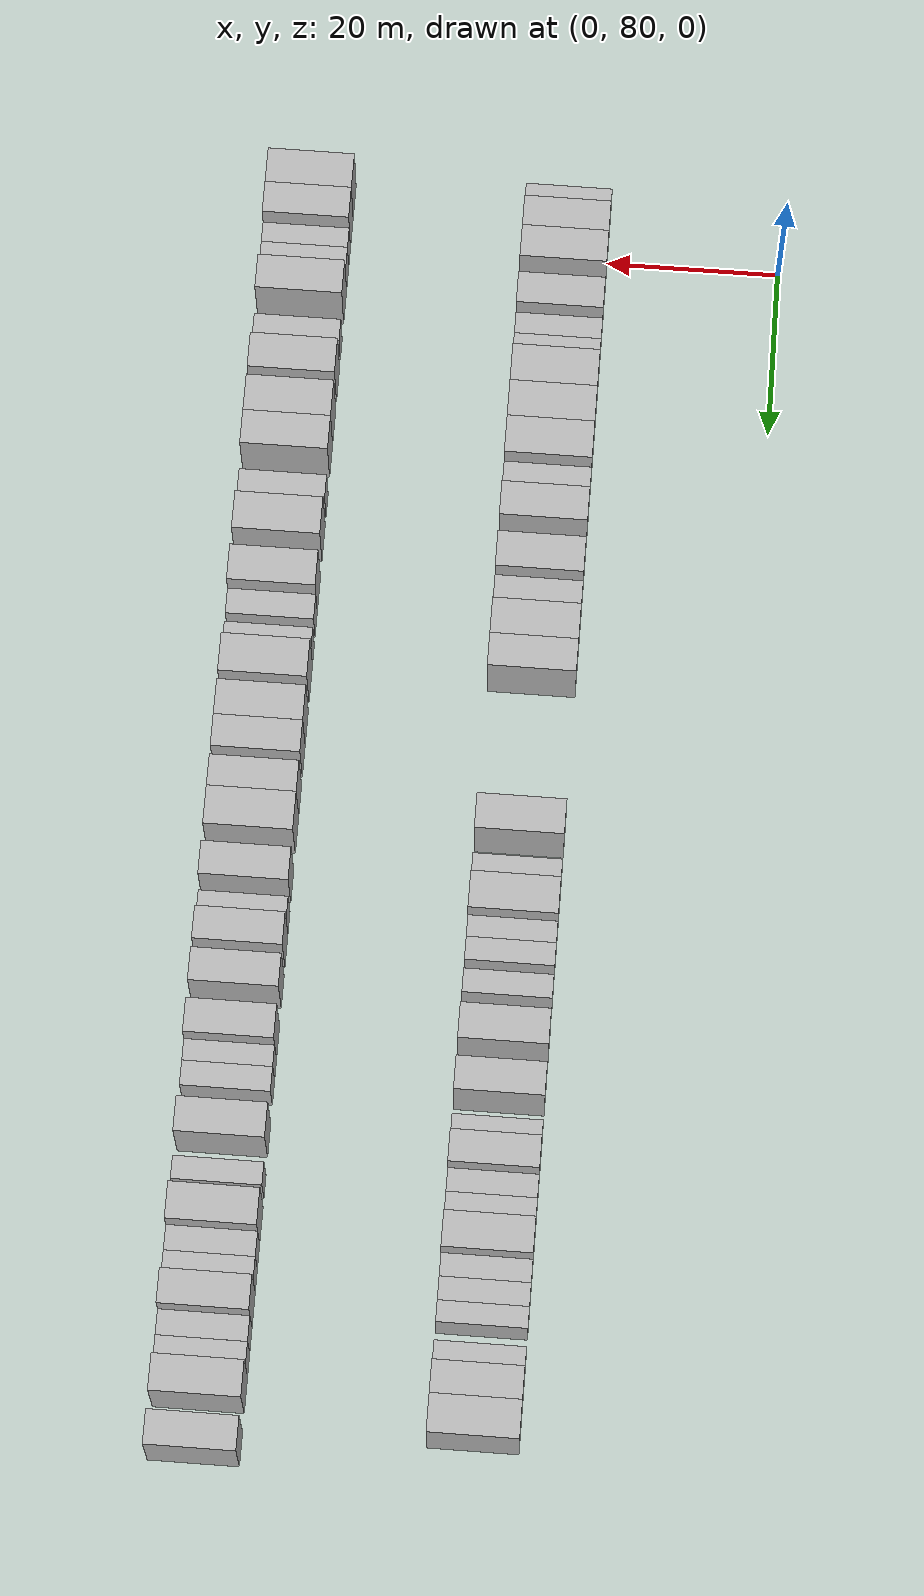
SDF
<sdf version="1.6">
 <world name="default">
  <model name="building_73">
   <static>1</static>
   <pose>25.0000 74.6193 0 0.000000 0.000000 0.000000</pose>
   <link name="link">
    <pose>0 0 3.00 0 0 0</pose>
    <collision name="collision"><geometry><box><size>10.0000 2.9037 6.0000</size></box></geometry></collision>
    <visual name="visual">
     <cast_shadows>0</cast_shadows>
     <geometry><box><size>10.0000 2.9037 6.0000</size></box></geometry>
     <material>
      <script>
       <uri>model://HANNAS_wall/materials/scripts</uri>
       <uri>model://HANNAS_wall/materials/textures</uri>
       <name>vrc/HANNAS_wall</name>
      </script>
     </material>
    </visual>
   </link>
  </model>
  <model name="building_74">
   <static>1</static>
   <pose>25.0000 77.9240 0 0.000000 0.000000 0.000000</pose>
   <link name="link">
    <pose>0 0 4.50 0 0 0</pose>
    <collision name="collision"><geometry><box><size>10.0000 3.7057 9.0000</size></box></geometry></collision>
    <visual name="visual">
     <cast_shadows>0</cast_shadows>
     <geometry><box><size>10.0000 3.7057 9.0000</size></box></geometry>
     <material>
      <script>
       <uri>model://HANNAS_wall/materials/scripts</uri>
       <uri>model://HANNAS_wall/materials/textures</uri>
       <name>vrc/HANNAS_wall</name>
      </script>
     </material>
    </visual>
   </link>
  </model>
  <model name="building_75">
   <static>1</static>
   <pose>25.0000 81.7201 0 0.000000 0.000000 0.000000</pose>
   <link name="link">
    <pose>0 0 4.50 0 0 0</pose>
    <collision name="collision"><geometry><box><size>10.0000 3.8865 9.0000</size></box></geometry></collision>
    <visual name="visual">
     <cast_shadows>0</cast_shadows>
     <geometry><box><size>10.0000 3.8865 9.0000</size></box></geometry>
     <material>
      <script>
       <uri>model://HANNAS_wall/materials/scripts</uri>
       <uri>model://HANNAS_wall/materials/textures</uri>
       <name>vrc/HANNAS_wall</name>
      </script>
     </material>
    </visual>
   </link>
  </model>
  <model name="building_76">
   <static>1</static>
   <pose>25.0000 87.5533 0 0.000000 0.000000 0.000000</pose>
   <link name="link">
    <pose>0 0 4.50 0 0 0</pose>
    <collision name="collision"><geometry><box><size>10.0000 3.7800 9.0000</size></box></geometry></collision>
    <visual name="visual">
     <cast_shadows>0</cast_shadows>
     <geometry><box><size>10.0000 3.7800 9.0000</size></box></geometry>
     <material>
      <script>
       <uri>model://HANNAS_wall/materials/scripts</uri>
       <uri>model://HANNAS_wall/materials/textures</uri>
       <name>vrc/HANNAS_wall</name>
      </script>
     </material>
    </visual>
   </link>
  </model>
  <model name="building_77">
   <static>1</static>
   <pose>25.0000 90.7347 0 0.000000 0.000000 0.000000</pose>
   <link name="link">
    <pose>0 0 3.00 0 0 0</pose>
    <collision name="collision"><geometry><box><size>10.0000 2.5827 6.0000</size></box></geometry></collision>
    <visual name="visual">
     <cast_shadows>0</cast_shadows>
     <geometry><box><size>10.0000 2.5827 6.0000</size></box></geometry>
     <material>
      <script>
       <uri>model://HANNAS_wall/materials/scripts</uri>
       <uri>model://HANNAS_wall/materials/textures</uri>
       <name>vrc/HANNAS_wall</name>
      </script>
     </material>
    </visual>
   </link>
  </model>
  <model name="building_78">
   <static>1</static>
   <pose>25.0000 93.3407 0 0.000000 0.000000 0.000000</pose>
   <link name="link">
    <pose>0 0 3.00 0 0 0</pose>
    <collision name="collision"><geometry><box><size>10.0000 2.6293 6.0000</size></box></geometry></collision>
    <visual name="visual">
     <cast_shadows>0</cast_shadows>
     <geometry><box><size>10.0000 2.6293 6.0000</size></box></geometry>
     <material>
      <script>
       <uri>model://HANNAS_wall/materials/scripts</uri>
       <uri>model://HANNAS_wall/materials/textures</uri>
       <name>vrc/HANNAS_wall</name>
      </script>
     </material>
    </visual>
   </link>
  </model>
  <model name="building_79">
   <static>1</static>
   <pose>25.0000 96.8874 0 0.000000 0.000000 0.000000</pose>
   <link name="link">
    <pose>0 0 4.50 0 0 0</pose>
    <collision name="collision"><geometry><box><size>10.0000 4.4642 9.0000</size></box></geometry></collision>
    <visual name="visual">
     <cast_shadows>0</cast_shadows>
     <geometry><box><size>10.0000 4.4642 9.0000</size></box></geometry>
     <material>
      <script>
       <uri>model://HANNAS_wall/materials/scripts</uri>
       <uri>model://HANNAS_wall/materials/textures</uri>
       <name>vrc/HANNAS_wall</name>
      </script>
     </material>
    </visual>
   </link>
  </model>
  <model name="building_80">
   <static>1</static>
   <pose>25.0000 101.2977 0 0.000000 0.000000 0.000000</pose>
   <link name="link">
    <pose>0 0 4.50 0 0 0</pose>
    <collision name="collision"><geometry><box><size>10.0000 4.3563 9.0000</size></box></geometry></collision>
    <visual name="visual">
     <cast_shadows>0</cast_shadows>
     <geometry><box><size>10.0000 4.3563 9.0000</size></box></geometry>
     <material>
      <script>
       <uri>model://HANNAS_wall/materials/scripts</uri>
       <uri>model://HANNAS_wall/materials/textures</uri>
       <name>vrc/HANNAS_wall</name>
      </script>
     </material>
    </visual>
   </link>
  </model>
  <model name="building_81">
   <static>1</static>
   <pose>25.0000 105.7015 0 0.000000 0.000000 0.000000</pose>
   <link name="link">
    <pose>0 0 4.50 0 0 0</pose>
    <collision name="collision"><geometry><box><size>10.0000 4.4514 9.0000</size></box></geometry></collision>
    <visual name="visual">
     <cast_shadows>0</cast_shadows>
     <geometry><box><size>10.0000 4.4514 9.0000</size></box></geometry>
     <material>
      <script>
       <uri>model://HANNAS_wall/materials/scripts</uri>
       <uri>model://HANNAS_wall/materials/textures</uri>
       <name>vrc/HANNAS_wall</name>
      </script>
     </material>
    </visual>
   </link>
  </model>
  <model name="building_82">
   <static>1</static>
   <pose>25.0000 109.2137 0 0.000000 0.000000 0.000000</pose>
   <link name="link">
    <pose>0 0 3.00 0 0 0</pose>
    <collision name="collision"><geometry><box><size>10.0000 2.5729 6.0000</size></box></geometry></collision>
    <visual name="visual">
     <cast_shadows>0</cast_shadows>
     <geometry><box><size>10.0000 2.5729 6.0000</size></box></geometry>
     <material>
      <script>
       <uri>model://HANNAS_wall/materials/scripts</uri>
       <uri>model://HANNAS_wall/materials/textures</uri>
       <name>vrc/HANNAS_wall</name>
      </script>
     </material>
    </visual>
   </link>
  </model>
  <model name="building_83">
   <static>1</static>
   <pose>25.0000 113.5273 0 0.000000 0.000000 0.000000</pose>
   <link name="link">
    <pose>0 0 4.50 0 0 0</pose>
    <collision name="collision"><geometry><box><size>10.0000 4.0542 9.0000</size></box></geometry></collision>
    <visual name="visual">
     <cast_shadows>0</cast_shadows>
     <geometry><box><size>10.0000 4.0542 9.0000</size></box></geometry>
     <material>
      <script>
       <uri>model://HANNAS_wall/materials/scripts</uri>
       <uri>model://HANNAS_wall/materials/textures</uri>
       <name>vrc/HANNAS_wall</name>
      </script>
     </material>
    </visual>
   </link>
  </model>
  <model name="building_84">
   <static>1</static>
   <pose>25.0000 119.6583 0 0.000000 0.000000 0.000000</pose>
   <link name="link">
    <pose>0 0 4.50 0 0 0</pose>
    <collision name="collision"><geometry><box><size>10.0000 4.2080 9.0000</size></box></geometry></collision>
    <visual name="visual">
     <cast_shadows>0</cast_shadows>
     <geometry><box><size>10.0000 4.2080 9.0000</size></box></geometry>
     <material>
      <script>
       <uri>model://HANNAS_wall/materials/scripts</uri>
       <uri>model://HANNAS_wall/materials/textures</uri>
       <name>vrc/HANNAS_wall</name>
      </script>
     </material>
    </visual>
   </link>
  </model>
  <model name="building_85">
   <static>1</static>
   <pose>25.0000 123.1771 0 0.000000 0.000000 0.000000</pose>
   <link name="link">
    <pose>0 0 3.00 0 0 0</pose>
    <collision name="collision"><geometry><box><size>10.0000 2.8296 6.0000</size></box></geometry></collision>
    <visual name="visual">
     <cast_shadows>0</cast_shadows>
     <geometry><box><size>10.0000 2.8296 6.0000</size></box></geometry>
     <material>
      <script>
       <uri>model://HANNAS_wall/materials/scripts</uri>
       <uri>model://HANNAS_wall/materials/textures</uri>
       <name>vrc/HANNAS_wall</name>
      </script>
     </material>
    </visual>
   </link>
  </model>
  <model name="building_86">
   <static>1</static>
   <pose>25.0000 127.7052 0 0.000000 0.000000 0.000000</pose>
   <link name="link">
    <pose>0 0 4.50 0 0 0</pose>
    <collision name="collision"><geometry><box><size>10.0000 4.2266 9.0000</size></box></geometry></collision>
    <visual name="visual">
     <cast_shadows>0</cast_shadows>
     <geometry><box><size>10.0000 4.2266 9.0000</size></box></geometry>
     <material>
      <script>
       <uri>model://HANNAS_wall/materials/scripts</uri>
       <uri>model://HANNAS_wall/materials/textures</uri>
       <name>vrc/HANNAS_wall</name>
      </script>
     </material>
    </visual>
   </link>
  </model>
  <model name="building_87">
   <static>1</static>
   <pose>25.0000 131.7479 0 0.000000 0.000000 0.000000</pose>
   <link name="link">
    <pose>0 0 4.50 0 0 0</pose>
    <collision name="collision"><geometry><box><size>10.0000 3.8587 9.0000</size></box></geometry></collision>
    <visual name="visual">
     <cast_shadows>0</cast_shadows>
     <geometry><box><size>10.0000 3.8587 9.0000</size></box></geometry>
     <material>
      <script>
       <uri>model://HANNAS_wall/materials/scripts</uri>
       <uri>model://HANNAS_wall/materials/textures</uri>
       <name>vrc/HANNAS_wall</name>
      </script>
     </material>
    </visual>
   </link>
  </model>
  <model name="building_88">
   <static>1</static>
   <pose>25.0000 150.7793 0 0.000000 0.000000 0.000000</pose>
   <link name="link">
    <pose>0 0 4.50 0 0 0</pose>
    <collision name="collision"><geometry><box><size>10.0000 4.0680 9.0000</size></box></geometry></collision>
    <visual name="visual">
     <cast_shadows>0</cast_shadows>
     <geometry><box><size>10.0000 4.0680 9.0000</size></box></geometry>
     <material>
      <script>
       <uri>model://HANNAS_wall/materials/scripts</uri>
       <uri>model://HANNAS_wall/materials/textures</uri>
       <name>vrc/HANNAS_wall</name>
      </script>
     </material>
    </visual>
   </link>
  </model>
  <model name="building_89">
   <static>1</static>
   <pose>25.0000 156.2995 0 0.000000 0.000000 0.000000</pose>
   <link name="link">
    <pose>0 0 3.00 0 0 0</pose>
    <collision name="collision"><geometry><box><size>10.0000 2.9725 6.0000</size></box></geometry></collision>
    <visual name="visual">
     <cast_shadows>0</cast_shadows>
     <geometry><box><size>10.0000 2.9725 6.0000</size></box></geometry>
     <material>
      <script>
       <uri>model://HANNAS_wall/materials/scripts</uri>
       <uri>model://HANNAS_wall/materials/textures</uri>
       <name>vrc/HANNAS_wall</name>
      </script>
     </material>
    </visual>
   </link>
  </model>
  <model name="building_90">
   <static>1</static>
   <pose>25.0000 159.9072 0 0.000000 0.000000 0.000000</pose>
   <link name="link">
    <pose>0 0 4.50 0 0 0</pose>
    <collision name="collision"><geometry><box><size>10.0000 4.2428 9.0000</size></box></geometry></collision>
    <visual name="visual">
     <cast_shadows>0</cast_shadows>
     <geometry><box><size>10.0000 4.2428 9.0000</size></box></geometry>
     <material>
      <script>
       <uri>model://HANNAS_wall/materials/scripts</uri>
       <uri>model://HANNAS_wall/materials/textures</uri>
       <name>vrc/HANNAS_wall</name>
      </script>
     </material>
    </visual>
   </link>
  </model>
  <model name="building_91">
   <static>1</static>
   <pose>25.0000 163.2697 0 0.000000 0.000000 0.000000</pose>
   <link name="link">
    <pose>0 0 3.00 0 0 0</pose>
    <collision name="collision"><geometry><box><size>10.0000 2.4823 6.0000</size></box></geometry></collision>
    <visual name="visual">
     <cast_shadows>0</cast_shadows>
     <geometry><box><size>10.0000 2.4823 6.0000</size></box></geometry>
     <material>
      <script>
       <uri>model://HANNAS_wall/materials/scripts</uri>
       <uri>model://HANNAS_wall/materials/textures</uri>
       <name>vrc/HANNAS_wall</name>
      </script>
     </material>
    </visual>
   </link>
  </model>
  <model name="building_92">
   <static>1</static>
   <pose>25.0000 165.8402 0 0.000000 0.000000 0.000000</pose>
   <link name="link">
    <pose>0 0 3.00 0 0 0</pose>
    <collision name="collision"><geometry><box><size>10.0000 2.6586 6.0000</size></box></geometry></collision>
    <visual name="visual">
     <cast_shadows>0</cast_shadows>
     <geometry><box><size>10.0000 2.6586 6.0000</size></box></geometry>
     <material>
      <script>
       <uri>model://HANNAS_wall/materials/scripts</uri>
       <uri>model://HANNAS_wall/materials/textures</uri>
       <name>vrc/HANNAS_wall</name>
      </script>
     </material>
    </visual>
   </link>
  </model>
  <model name="building_93">
   <static>1</static>
   <pose>25.0000 169.5331 0 0.000000 0.000000 0.000000</pose>
   <link name="link">
    <pose>0 0 3.00 0 0 0</pose>
    <collision name="collision"><geometry><box><size>10.0000 2.7274 6.0000</size></box></geometry></collision>
    <visual name="visual">
     <cast_shadows>0</cast_shadows>
     <geometry><box><size>10.0000 2.7274 6.0000</size></box></geometry>
     <material>
      <script>
       <uri>model://HANNAS_wall/materials/scripts</uri>
       <uri>model://HANNAS_wall/materials/textures</uri>
       <name>vrc/HANNAS_wall</name>
      </script>
     </material>
    </visual>
   </link>
  </model>
  <model name="building_94">
   <static>1</static>
   <pose>25.0000 174.9212 0 0.000000 0.000000 0.000000</pose>
   <link name="link">
    <pose>0 0 4.50 0 0 0</pose>
    <collision name="collision"><geometry><box><size>10.0000 4.0488 9.0000</size></box></geometry></collision>
    <visual name="visual">
     <cast_shadows>0</cast_shadows>
     <geometry><box><size>10.0000 4.0488 9.0000</size></box></geometry>
     <material>
      <script>
       <uri>model://HANNAS_wall/materials/scripts</uri>
       <uri>model://HANNAS_wall/materials/textures</uri>
       <name>vrc/HANNAS_wall</name>
      </script>
     </material>
    </visual>
   </link>
  </model>
  <model name="building_95">
   <static>1</static>
   <pose>25.0000 180.8458 0 0.000000 0.000000 0.000000</pose>
   <link name="link">
    <pose>0 0 4.50 0 0 0</pose>
    <collision name="collision"><geometry><box><size>10.0000 3.8003 9.0000</size></box></geometry></collision>
    <visual name="visual">
     <cast_shadows>0</cast_shadows>
     <geometry><box><size>10.0000 3.8003 9.0000</size></box></geometry>
     <material>
      <script>
       <uri>model://HANNAS_wall/materials/scripts</uri>
       <uri>model://HANNAS_wall/materials/textures</uri>
       <name>vrc/HANNAS_wall</name>
      </script>
     </material>
    </visual>
   </link>
  </model>
  <model name="building_96">
   <static>1</static>
   <pose>25.0000 185.9771 0 0.000000 0.000000 0.000000</pose>
   <link name="link">
    <pose>0 0 3.00 0 0 0</pose>
    <collision name="collision"><geometry><box><size>10.0000 2.4623 6.0000</size></box></geometry></collision>
    <visual name="visual">
     <cast_shadows>0</cast_shadows>
     <geometry><box><size>10.0000 2.4623 6.0000</size></box></geometry>
     <material>
      <script>
       <uri>model://HANNAS_wall/materials/scripts</uri>
       <uri>model://HANNAS_wall/materials/textures</uri>
       <name>vrc/HANNAS_wall</name>
      </script>
     </material>
    </visual>
   </link>
  </model>
  <model name="building_97">
   <static>1</static>
   <pose>25.0000 189.0285 0 0.000000 0.000000 0.000000</pose>
   <link name="link">
    <pose>0 0 4.50 0 0 0</pose>
    <collision name="collision"><geometry><box><size>10.0000 3.6406 9.0000</size></box></geometry></collision>
    <visual name="visual">
     <cast_shadows>0</cast_shadows>
     <geometry><box><size>10.0000 3.6406 9.0000</size></box></geometry>
     <material>
      <script>
       <uri>model://HANNAS_wall/materials/scripts</uri>
       <uri>model://HANNAS_wall/materials/textures</uri>
       <name>vrc/HANNAS_wall</name>
      </script>
     </material>
    </visual>
   </link>
  </model>
  <model name="building_98">
   <static>1</static>
   <pose>25.0000 192.1681 0 0.000000 0.000000 0.000000</pose>
   <link name="link">
    <pose>0 0 3.00 0 0 0</pose>
    <collision name="collision"><geometry><box><size>10.0000 2.6386 6.0000</size></box></geometry></collision>
    <visual name="visual">
     <cast_shadows>0</cast_shadows>
     <geometry><box><size>10.0000 2.6386 6.0000</size></box></geometry>
     <material>
      <script>
       <uri>model://HANNAS_wall/materials/scripts</uri>
       <uri>model://HANNAS_wall/materials/textures</uri>
       <name>vrc/HANNAS_wall</name>
      </script>
     </material>
    </visual>
   </link>
  </model>
  <model name="building_99">
   <static>1</static>
   <pose>25.0000 194.8685 0 0.000000 0.000000 0.000000</pose>
   <link name="link">
    <pose>0 0 3.00 0 0 0</pose>
    <collision name="collision"><geometry><box><size>10.0000 2.7622 6.0000</size></box></geometry></collision>
    <visual name="visual">
     <cast_shadows>0</cast_shadows>
     <geometry><box><size>10.0000 2.7622 6.0000</size></box></geometry>
     <material>
      <script>
       <uri>model://HANNAS_wall/materials/scripts</uri>
       <uri>model://HANNAS_wall/materials/textures</uri>
       <name>vrc/HANNAS_wall</name>
      </script>
     </material>
    </visual>
   </link>
  </model>
  <model name="building_100">
   <static>1</static>
   <pose>25.0000 198.2871 0 0.000000 0.000000 0.000000</pose>
   <link name="link">
    <pose>0 0 4.50 0 0 0</pose>
    <collision name="collision"><geometry><box><size>10.0000 4.0748 9.0000</size></box></geometry></collision>
    <visual name="visual">
     <cast_shadows>0</cast_shadows>
     <geometry><box><size>10.0000 4.0748 9.0000</size></box></geometry>
     <material>
      <script>
       <uri>model://HANNAS_wall/materials/scripts</uri>
       <uri>model://HANNAS_wall/materials/textures</uri>
       <name>vrc/HANNAS_wall</name>
      </script>
     </material>
    </visual>
   </link>
  </model>
  <model name="building_101">
   <static>1</static>
   <pose>25.0000 201.6214 0 0.000000 0.000000 0.000000</pose>
   <link name="link">
    <pose>0 0 3.00 0 0 0</pose>
    <collision name="collision"><geometry><box><size>10.0000 2.5939 6.0000</size></box></geometry></collision>
    <visual name="visual">
     <cast_shadows>0</cast_shadows>
     <geometry><box><size>10.0000 2.5939 6.0000</size></box></geometry>
     <material>
      <script>
       <uri>model://HANNAS_wall/materials/scripts</uri>
       <uri>model://HANNAS_wall/materials/textures</uri>
       <name>vrc/HANNAS_wall</name>
      </script>
     </material>
    </visual>
   </link>
  </model>
  <model name="building_102">
   <static>1</static>
   <pose>25.0000 204.2337 0 0.000000 0.000000 0.000000</pose>
   <link name="link">
    <pose>0 0 3.00 0 0 0</pose>
    <collision name="collision"><geometry><box><size>10.0000 2.6308 6.0000</size></box></geometry></collision>
    <visual name="visual">
     <cast_shadows>0</cast_shadows>
     <geometry><box><size>10.0000 2.6308 6.0000</size></box></geometry>
     <material>
      <script>
       <uri>model://HANNAS_wall/materials/scripts</uri>
       <uri>model://HANNAS_wall/materials/textures</uri>
       <name>vrc/HANNAS_wall</name>
      </script>
     </material>
    </visual>
   </link>
  </model>
  <model name="building_103">
   <static>1</static>
   <pose>25.0000 206.7562 0 0.000000 0.000000 0.000000</pose>
   <link name="link">
    <pose>0 0 3.00 0 0 0</pose>
    <collision name="collision"><geometry><box><size>10.0000 2.4143 6.0000</size></box></geometry></collision>
    <visual name="visual">
     <cast_shadows>0</cast_shadows>
     <geometry><box><size>10.0000 2.4143 6.0000</size></box></geometry>
     <material>
      <script>
       <uri>model://HANNAS_wall/materials/scripts</uri>
       <uri>model://HANNAS_wall/materials/textures</uri>
       <name>vrc/HANNAS_wall</name>
      </script>
     </material>
    </visual>
   </link>
  </model>
  <model name="building_104">
   <static>1</static>
   <pose>25.0000 211.3185 0 0.000000 0.000000 0.000000</pose>
   <link name="link">
    <pose>0 0 3.00 0 0 0</pose>
    <collision name="collision"><geometry><box><size>10.0000 2.7103 6.0000</size></box></geometry></collision>
    <visual name="visual">
     <cast_shadows>0</cast_shadows>
     <geometry><box><size>10.0000 2.7103 6.0000</size></box></geometry>
     <material>
      <script>
       <uri>model://HANNAS_wall/materials/scripts</uri>
       <uri>model://HANNAS_wall/materials/textures</uri>
       <name>vrc/HANNAS_wall</name>
      </script>
     </material>
    </visual>
   </link>
  </model>
  <model name="building_105">
   <static>1</static>
   <pose>25.0000 214.5007 0 0.000000 0.000000 0.000000</pose>
   <link name="link">
    <pose>0 0 4.50 0 0 0</pose>
    <collision name="collision"><geometry><box><size>10.0000 3.6541 9.0000</size></box></geometry></collision>
    <visual name="visual">
     <cast_shadows>0</cast_shadows>
     <geometry><box><size>10.0000 3.6541 9.0000</size></box></geometry>
     <material>
      <script>
       <uri>model://HANNAS_wall/materials/scripts</uri>
       <uri>model://HANNAS_wall/materials/textures</uri>
       <name>vrc/HANNAS_wall</name>
      </script>
     </material>
    </visual>
   </link>
  </model>
  <model name="building_106">
   <static>1</static>
   <pose>25.0000 218.4634 0 0.000000 0.000000 0.000000</pose>
   <link name="link">
    <pose>0 0 4.50 0 0 0</pose>
    <collision name="collision"><geometry><box><size>10.0000 4.2713 9.0000</size></box></geometry></collision>
    <visual name="visual">
     <cast_shadows>0</cast_shadows>
     <geometry><box><size>10.0000 4.2713 9.0000</size></box></geometry>
     <material>
      <script>
       <uri>model://HANNAS_wall/materials/scripts</uri>
       <uri>model://HANNAS_wall/materials/textures</uri>
       <name>vrc/HANNAS_wall</name>
      </script>
     </material>
    </visual>
   </link>
  </model>
  <model name="building_175">
   <static>1</static>
   <pose>55.0000 74.4858 0 0.000000 0.000000 0.000000</pose>
   <link name="link">
    <pose>0 0 4.50 0 0 0</pose>
    <collision name="collision"><geometry><box><size>10.0000 4.2472 9.0000</size></box></geometry></collision>
    <visual name="visual">
     <cast_shadows>0</cast_shadows>
     <geometry><box><size>10.0000 4.2472 9.0000</size></box></geometry>
     <material>
      <script>
       <uri>model://HANNAS_wall/materials/scripts</uri>
       <uri>model://HANNAS_wall/materials/textures</uri>
       <name>vrc/HANNAS_wall</name>
      </script>
     </material>
    </visual>
   </link>
  </model>
  <model name="building_176">
   <static>1</static>
   <pose>55.0000 78.5011 0 0.000000 0.000000 0.000000</pose>
   <link name="link">
    <pose>0 0 4.50 0 0 0</pose>
    <collision name="collision"><geometry><box><size>10.0000 3.7834 9.0000</size></box></geometry></collision>
    <visual name="visual">
     <cast_shadows>0</cast_shadows>
     <geometry><box><size>10.0000 3.7834 9.0000</size></box></geometry>
     <material>
      <script>
       <uri>model://HANNAS_wall/materials/scripts</uri>
       <uri>model://HANNAS_wall/materials/textures</uri>
       <name>vrc/HANNAS_wall</name>
      </script>
     </material>
    </visual>
   </link>
  </model>
  <model name="building_177">
   <static>1</static>
   <pose>55.0000 81.6072 0 0.000000 0.000000 0.000000</pose>
   <link name="link">
    <pose>0 0 3.00 0 0 0</pose>
    <collision name="collision"><geometry><box><size>10.0000 2.4286 6.0000</size></box></geometry></collision>
    <visual name="visual">
     <cast_shadows>0</cast_shadows>
     <geometry><box><size>10.0000 2.4286 6.0000</size></box></geometry>
     <material>
      <script>
       <uri>model://HANNAS_wall/materials/scripts</uri>
       <uri>model://HANNAS_wall/materials/textures</uri>
       <name>vrc/HANNAS_wall</name>
      </script>
     </material>
    </visual>
   </link>
  </model>
  <model name="building_178">
   <static>1</static>
   <pose>55.0000 84.3041 0 0.000000 0.000000 0.000000</pose>
   <link name="link">
    <pose>0 0 3.00 0 0 0</pose>
    <collision name="collision"><geometry><box><size>10.0000 2.9653 6.0000</size></box></geometry></collision>
    <visual name="visual">
     <cast_shadows>0</cast_shadows>
     <geometry><box><size>10.0000 2.9653 6.0000</size></box></geometry>
     <material>
      <script>
       <uri>model://HANNAS_wall/materials/scripts</uri>
       <uri>model://HANNAS_wall/materials/textures</uri>
       <name>vrc/HANNAS_wall</name>
      </script>
     </material>
    </visual>
   </link>
  </model>
  <model name="building_179">
   <static>1</static>
   <pose>55.0000 87.8325 0 0.000000 0.000000 0.000000</pose>
   <link name="link">
    <pose>0 0 4.50 0 0 0</pose>
    <collision name="collision"><geometry><box><size>10.0000 4.0915 9.0000</size></box></geometry></collision>
    <visual name="visual">
     <cast_shadows>0</cast_shadows>
     <geometry><box><size>10.0000 4.0915 9.0000</size></box></geometry>
     <material>
      <script>
       <uri>model://HANNAS_wall/materials/scripts</uri>
       <uri>model://HANNAS_wall/materials/textures</uri>
       <name>vrc/HANNAS_wall</name>
      </script>
     </material>
    </visual>
   </link>
  </model>
  <model name="building_180">
   <static>1</static>
   <pose>55.0000 93.2039 0 0.000000 0.000000 0.000000</pose>
   <link name="link">
    <pose>0 0 3.00 0 0 0</pose>
    <collision name="collision"><geometry><box><size>10.0000 2.6511 6.0000</size></box></geometry></collision>
    <visual name="visual">
     <cast_shadows>0</cast_shadows>
     <geometry><box><size>10.0000 2.6511 6.0000</size></box></geometry>
     <material>
      <script>
       <uri>model://HANNAS_wall/materials/scripts</uri>
       <uri>model://HANNAS_wall/materials/textures</uri>
       <name>vrc/HANNAS_wall</name>
      </script>
     </material>
    </visual>
   </link>
  </model>
  <model name="building_181">
   <static>1</static>
   <pose>55.0000 97.6251 0 0.000000 0.000000 0.000000</pose>
   <link name="link">
    <pose>0 0 4.50 0 0 0</pose>
    <collision name="collision"><geometry><box><size>10.0000 4.1913 9.0000</size></box></geometry></collision>
    <visual name="visual">
     <cast_shadows>0</cast_shadows>
     <geometry><box><size>10.0000 4.1913 9.0000</size></box></geometry>
     <material>
      <script>
       <uri>model://HANNAS_wall/materials/scripts</uri>
       <uri>model://HANNAS_wall/materials/textures</uri>
       <name>vrc/HANNAS_wall</name>
      </script>
     </material>
    </visual>
   </link>
  </model>
  <model name="building_182">
   <static>1</static>
   <pose>55.0000 102.8966 0 0.000000 0.000000 0.000000</pose>
   <link name="link">
    <pose>0 0 4.50 0 0 0</pose>
    <collision name="collision"><geometry><box><size>10.0000 4.3517 9.0000</size></box></geometry></collision>
    <visual name="visual">
     <cast_shadows>0</cast_shadows>
     <geometry><box><size>10.0000 4.3517 9.0000</size></box></geometry>
     <material>
      <script>
       <uri>model://HANNAS_wall/materials/scripts</uri>
       <uri>model://HANNAS_wall/materials/textures</uri>
       <name>vrc/HANNAS_wall</name>
      </script>
     </material>
    </visual>
   </link>
  </model>
  <model name="building_183">
   <static>1</static>
   <pose>55.0000 107.1035 0 0.000000 0.000000 0.000000</pose>
   <link name="link">
    <pose>0 0 4.50 0 0 0</pose>
    <collision name="collision"><geometry><box><size>10.0000 4.0620 9.0000</size></box></geometry></collision>
    <visual name="visual">
     <cast_shadows>0</cast_shadows>
     <geometry><box><size>10.0000 4.0620 9.0000</size></box></geometry>
     <material>
      <script>
       <uri>model://HANNAS_wall/materials/scripts</uri>
       <uri>model://HANNAS_wall/materials/textures</uri>
       <name>vrc/HANNAS_wall</name>
      </script>
     </material>
    </visual>
   </link>
  </model>
  <model name="building_184">
   <static>1</static>
   <pose>55.0000 112.5785 0 0.000000 0.000000 0.000000</pose>
   <link name="link">
    <pose>0 0 3.00 0 0 0</pose>
    <collision name="collision"><geometry><box><size>10.0000 2.8879 6.0000</size></box></geometry></collision>
    <visual name="visual">
     <cast_shadows>0</cast_shadows>
     <geometry><box><size>10.0000 2.8879 6.0000</size></box></geometry>
     <material>
      <script>
       <uri>model://HANNAS_wall/materials/scripts</uri>
       <uri>model://HANNAS_wall/materials/textures</uri>
       <name>vrc/HANNAS_wall</name>
      </script>
     </material>
    </visual>
   </link>
  </model>
  <model name="building_185">
   <static>1</static>
   <pose>55.0000 117.2468 0 0.000000 0.000000 0.000000</pose>
   <link name="link">
    <pose>0 0 4.50 0 0 0</pose>
    <collision name="collision"><geometry><box><size>10.0000 4.4488 9.0000</size></box></geometry></collision>
    <visual name="visual">
     <cast_shadows>0</cast_shadows>
     <geometry><box><size>10.0000 4.4488 9.0000</size></box></geometry>
     <material>
      <script>
       <uri>model://HANNAS_wall/materials/scripts</uri>
       <uri>model://HANNAS_wall/materials/textures</uri>
       <name>vrc/HANNAS_wall</name>
      </script>
     </material>
    </visual>
   </link>
  </model>
  <model name="building_186">
   <static>1</static>
   <pose>55.0000 123.5730 0 0.000000 0.000000 0.000000</pose>
   <link name="link">
    <pose>0 0 4.50 0 0 0</pose>
    <collision name="collision"><geometry><box><size>10.0000 4.2035 9.0000</size></box></geometry></collision>
    <visual name="visual">
     <cast_shadows>0</cast_shadows>
     <geometry><box><size>10.0000 4.2035 9.0000</size></box></geometry>
     <material>
      <script>
       <uri>model://HANNAS_wall/materials/scripts</uri>
       <uri>model://HANNAS_wall/materials/textures</uri>
       <name>vrc/HANNAS_wall</name>
      </script>
     </material>
    </visual>
   </link>
  </model>
  <model name="building_187">
   <static>1</static>
   <pose>55.0000 127.1680 0 0.000000 0.000000 0.000000</pose>
   <link name="link">
    <pose>0 0 3.00 0 0 0</pose>
    <collision name="collision"><geometry><box><size>10.0000 2.9866 6.0000</size></box></geometry></collision>
    <visual name="visual">
     <cast_shadows>0</cast_shadows>
     <geometry><box><size>10.0000 2.9866 6.0000</size></box></geometry>
     <material>
      <script>
       <uri>model://HANNAS_wall/materials/scripts</uri>
       <uri>model://HANNAS_wall/materials/textures</uri>
       <name>vrc/HANNAS_wall</name>
      </script>
     </material>
    </visual>
   </link>
  </model>
  <model name="building_188">
   <static>1</static>
   <pose>55.0000 130.8858 0 0.000000 0.000000 0.000000</pose>
   <link name="link">
    <pose>0 0 3.00 0 0 0</pose>
    <collision name="collision"><geometry><box><size>10.0000 2.4490 6.0000</size></box></geometry></collision>
    <visual name="visual">
     <cast_shadows>0</cast_shadows>
     <geometry><box><size>10.0000 2.4490 6.0000</size></box></geometry>
     <material>
      <script>
       <uri>model://HANNAS_wall/materials/scripts</uri>
       <uri>model://HANNAS_wall/materials/textures</uri>
       <name>vrc/HANNAS_wall</name>
      </script>
     </material>
    </visual>
   </link>
  </model>
  <model name="building_189">
   <static>1</static>
   <pose>55.0000 134.3501 0 0.000000 0.000000 0.000000</pose>
   <link name="link">
    <pose>0 0 4.50 0 0 0</pose>
    <collision name="collision"><geometry><box><size>10.0000 4.4795 9.0000</size></box></geometry></collision>
    <visual name="visual">
     <cast_shadows>0</cast_shadows>
     <geometry><box><size>10.0000 4.4795 9.0000</size></box></geometry>
     <material>
      <script>
       <uri>model://HANNAS_wall/materials/scripts</uri>
       <uri>model://HANNAS_wall/materials/textures</uri>
       <name>vrc/HANNAS_wall</name>
      </script>
     </material>
    </visual>
   </link>
  </model>
  <model name="building_190">
   <static>1</static>
   <pose>55.0000 139.6657 0 0.000000 0.000000 0.000000</pose>
   <link name="link">
    <pose>0 0 4.50 0 0 0</pose>
    <collision name="collision"><geometry><box><size>10.0000 4.1517 9.0000</size></box></geometry></collision>
    <visual name="visual">
     <cast_shadows>0</cast_shadows>
     <geometry><box><size>10.0000 4.1517 9.0000</size></box></geometry>
     <material>
      <script>
       <uri>model://HANNAS_wall/materials/scripts</uri>
       <uri>model://HANNAS_wall/materials/textures</uri>
       <name>vrc/HANNAS_wall</name>
      </script>
     </material>
    </visual>
   </link>
  </model>
  <model name="building_191">
   <static>1</static>
   <pose>55.0000 143.6187 0 0.000000 0.000000 0.000000</pose>
   <link name="link">
    <pose>0 0 4.50 0 0 0</pose>
    <collision name="collision"><geometry><box><size>10.0000 3.7542 9.0000</size></box></geometry></collision>
    <visual name="visual">
     <cast_shadows>0</cast_shadows>
     <geometry><box><size>10.0000 3.7542 9.0000</size></box></geometry>
     <material>
      <script>
       <uri>model://HANNAS_wall/materials/scripts</uri>
       <uri>model://HANNAS_wall/materials/textures</uri>
       <name>vrc/HANNAS_wall</name>
      </script>
     </material>
    </visual>
   </link>
  </model>
  <model name="building_192">
   <static>1</static>
   <pose>55.0000 148.3157 0 0.000000 0.000000 0.000000</pose>
   <link name="link">
    <pose>0 0 4.50 0 0 0</pose>
    <collision name="collision"><geometry><box><size>10.0000 3.6399 9.0000</size></box></geometry></collision>
    <visual name="visual">
     <cast_shadows>0</cast_shadows>
     <geometry><box><size>10.0000 3.6399 9.0000</size></box></geometry>
     <material>
      <script>
       <uri>model://HANNAS_wall/materials/scripts</uri>
       <uri>model://HANNAS_wall/materials/textures</uri>
       <name>vrc/HANNAS_wall</name>
      </script>
     </material>
    </visual>
   </link>
  </model>
  <model name="building_193">
   <static>1</static>
   <pose>55.0000 152.3643 0 0.000000 0.000000 0.000000</pose>
   <link name="link">
    <pose>0 0 4.50 0 0 0</pose>
    <collision name="collision"><geometry><box><size>10.0000 4.4573 9.0000</size></box></geometry></collision>
    <visual name="visual">
     <cast_shadows>0</cast_shadows>
     <geometry><box><size>10.0000 4.4573 9.0000</size></box></geometry>
     <material>
      <script>
       <uri>model://HANNAS_wall/materials/scripts</uri>
       <uri>model://HANNAS_wall/materials/textures</uri>
       <name>vrc/HANNAS_wall</name>
      </script>
     </material>
    </visual>
   </link>
  </model>
  <model name="building_194">
   <static>1</static>
   <pose>55.0000 158.5067 0 0.000000 0.000000 0.000000</pose>
   <link name="link">
    <pose>0 0 4.50 0 0 0</pose>
    <collision name="collision"><geometry><box><size>10.0000 3.8273 9.0000</size></box></geometry></collision>
    <visual name="visual">
     <cast_shadows>0</cast_shadows>
     <geometry><box><size>10.0000 3.8273 9.0000</size></box></geometry>
     <material>
      <script>
       <uri>model://HANNAS_wall/materials/scripts</uri>
       <uri>model://HANNAS_wall/materials/textures</uri>
       <name>vrc/HANNAS_wall</name>
      </script>
     </material>
    </visual>
   </link>
  </model>
  <model name="building_195">
   <static>1</static>
   <pose>55.0000 162.7634 0 0.000000 0.000000 0.000000</pose>
   <link name="link">
    <pose>0 0 3.00 0 0 0</pose>
    <collision name="collision"><geometry><box><size>10.0000 2.6861 6.0000</size></box></geometry></collision>
    <visual name="visual">
     <cast_shadows>0</cast_shadows>
     <geometry><box><size>10.0000 2.6861 6.0000</size></box></geometry>
     <material>
      <script>
       <uri>model://HANNAS_wall/materials/scripts</uri>
       <uri>model://HANNAS_wall/materials/textures</uri>
       <name>vrc/HANNAS_wall</name>
      </script>
     </material>
    </visual>
   </link>
  </model>
  <model name="building_196">
   <static>1</static>
   <pose>55.0000 165.9940 0 0.000000 0.000000 0.000000</pose>
   <link name="link">
    <pose>0 0 4.50 0 0 0</pose>
    <collision name="collision"><geometry><box><size>10.0000 3.7751 9.0000</size></box></geometry></collision>
    <visual name="visual">
     <cast_shadows>0</cast_shadows>
     <geometry><box><size>10.0000 3.7751 9.0000</size></box></geometry>
     <material>
      <script>
       <uri>model://HANNAS_wall/materials/scripts</uri>
       <uri>model://HANNAS_wall/materials/textures</uri>
       <name>vrc/HANNAS_wall</name>
      </script>
     </material>
    </visual>
   </link>
  </model>
  <model name="building_197">
   <static>1</static>
   <pose>55.0000 170.7726 0 0.000000 0.000000 0.000000</pose>
   <link name="link">
    <pose>0 0 4.50 0 0 0</pose>
    <collision name="collision"><geometry><box><size>10.0000 3.7822 9.0000</size></box></geometry></collision>
    <visual name="visual">
     <cast_shadows>0</cast_shadows>
     <geometry><box><size>10.0000 3.7822 9.0000</size></box></geometry>
     <material>
      <script>
       <uri>model://HANNAS_wall/materials/scripts</uri>
       <uri>model://HANNAS_wall/materials/textures</uri>
       <name>vrc/HANNAS_wall</name>
      </script>
     </material>
    </visual>
   </link>
  </model>
  <model name="building_198">
   <static>1</static>
   <pose>55.0000 176.5979 0 0.000000 0.000000 0.000000</pose>
   <link name="link">
    <pose>0 0 4.50 0 0 0</pose>
    <collision name="collision"><geometry><box><size>10.0000 3.8683 9.0000</size></box></geometry></collision>
    <visual name="visual">
     <cast_shadows>0</cast_shadows>
     <geometry><box><size>10.0000 3.8683 9.0000</size></box></geometry>
     <material>
      <script>
       <uri>model://HANNAS_wall/materials/scripts</uri>
       <uri>model://HANNAS_wall/materials/textures</uri>
       <name>vrc/HANNAS_wall</name>
      </script>
     </material>
    </visual>
   </link>
  </model>
  <model name="building_199">
   <static>1</static>
   <pose>55.0000 179.7537 0 0.000000 0.000000 0.000000</pose>
   <link name="link">
    <pose>0 0 3.00 0 0 0</pose>
    <collision name="collision"><geometry><box><size>10.0000 2.4434 6.0000</size></box></geometry></collision>
    <visual name="visual">
     <cast_shadows>0</cast_shadows>
     <geometry><box><size>10.0000 2.4434 6.0000</size></box></geometry>
     <material>
      <script>
       <uri>model://HANNAS_wall/materials/scripts</uri>
       <uri>model://HANNAS_wall/materials/textures</uri>
       <name>vrc/HANNAS_wall</name>
      </script>
     </material>
    </visual>
   </link>
  </model>
  <model name="building_200">
   <static>1</static>
   <pose>55.0000 182.3860 0 0.000000 0.000000 0.000000</pose>
   <link name="link">
    <pose>0 0 3.00 0 0 0</pose>
    <collision name="collision"><geometry><box><size>10.0000 2.8213 6.0000</size></box></geometry></collision>
    <visual name="visual">
     <cast_shadows>0</cast_shadows>
     <geometry><box><size>10.0000 2.8213 6.0000</size></box></geometry>
     <material>
      <script>
       <uri>model://HANNAS_wall/materials/scripts</uri>
       <uri>model://HANNAS_wall/materials/textures</uri>
       <name>vrc/HANNAS_wall</name>
      </script>
     </material>
    </visual>
   </link>
  </model>
  <model name="building_201">
   <static>1</static>
   <pose>55.0000 187.7677 0 0.000000 0.000000 0.000000</pose>
   <link name="link">
    <pose>0 0 4.50 0 0 0</pose>
    <collision name="collision"><geometry><box><size>10.0000 3.9419 9.0000</size></box></geometry></collision>
    <visual name="visual">
     <cast_shadows>0</cast_shadows>
     <geometry><box><size>10.0000 3.9419 9.0000</size></box></geometry>
     <material>
      <script>
       <uri>model://HANNAS_wall/materials/scripts</uri>
       <uri>model://HANNAS_wall/materials/textures</uri>
       <name>vrc/HANNAS_wall</name>
      </script>
     </material>
    </visual>
   </link>
  </model>
  <model name="building_202">
   <static>1</static>
   <pose>55.0000 193.0406 0 0.000000 0.000000 0.000000</pose>
   <link name="link">
    <pose>0 0 3.00 0 0 0</pose>
    <collision name="collision"><geometry><box><size>10.0000 2.6040 6.0000</size></box></geometry></collision>
    <visual name="visual">
     <cast_shadows>0</cast_shadows>
     <geometry><box><size>10.0000 2.6040 6.0000</size></box></geometry>
     <material>
      <script>
       <uri>model://HANNAS_wall/materials/scripts</uri>
       <uri>model://HANNAS_wall/materials/textures</uri>
       <name>vrc/HANNAS_wall</name>
      </script>
     </material>
    </visual>
   </link>
  </model>
  <model name="building_203">
   <static>1</static>
   <pose>55.0000 197.4133 0 0.000000 0.000000 0.000000</pose>
   <link name="link">
    <pose>0 0 4.50 0 0 0</pose>
    <collision name="collision"><geometry><box><size>10.0000 4.1412 9.0000</size></box></geometry></collision>
    <visual name="visual">
     <cast_shadows>0</cast_shadows>
     <geometry><box><size>10.0000 4.1412 9.0000</size></box></geometry>
     <material>
      <script>
       <uri>model://HANNAS_wall/materials/scripts</uri>
       <uri>model://HANNAS_wall/materials/textures</uri>
       <name>vrc/HANNAS_wall</name>
      </script>
     </material>
    </visual>
   </link>
  </model>
  <model name="building_204">
   <static>1</static>
   <pose>55.0000 200.8940 0 0.000000 0.000000 0.000000</pose>
   <link name="link">
    <pose>0 0 3.00 0 0 0</pose>
    <collision name="collision"><geometry><box><size>10.0000 2.8201 6.0000</size></box></geometry></collision>
    <visual name="visual">
     <cast_shadows>0</cast_shadows>
     <geometry><box><size>10.0000 2.8201 6.0000</size></box></geometry>
     <material>
      <script>
       <uri>model://HANNAS_wall/materials/scripts</uri>
       <uri>model://HANNAS_wall/materials/textures</uri>
       <name>vrc/HANNAS_wall</name>
      </script>
     </material>
    </visual>
   </link>
  </model>
  <model name="building_205">
   <static>1</static>
   <pose>55.0000 203.6222 0 0.000000 0.000000 0.000000</pose>
   <link name="link">
    <pose>0 0 3.00 0 0 0</pose>
    <collision name="collision"><geometry><box><size>10.0000 2.6362 6.0000</size></box></geometry></collision>
    <visual name="visual">
     <cast_shadows>0</cast_shadows>
     <geometry><box><size>10.0000 2.6362 6.0000</size></box></geometry>
     <material>
      <script>
       <uri>model://HANNAS_wall/materials/scripts</uri>
       <uri>model://HANNAS_wall/materials/textures</uri>
       <name>vrc/HANNAS_wall</name>
      </script>
     </material>
    </visual>
   </link>
  </model>
  <model name="building_206">
   <static>1</static>
   <pose>55.0000 206.8846 0 0.000000 0.000000 0.000000</pose>
   <link name="link">
    <pose>0 0 4.50 0 0 0</pose>
    <collision name="collision"><geometry><box><size>10.0000 3.8886 9.0000</size></box></geometry></collision>
    <visual name="visual">
     <cast_shadows>0</cast_shadows>
     <geometry><box><size>10.0000 3.8886 9.0000</size></box></geometry>
     <material>
      <script>
       <uri>model://HANNAS_wall/materials/scripts</uri>
       <uri>model://HANNAS_wall/materials/textures</uri>
       <name>vrc/HANNAS_wall</name>
      </script>
     </material>
    </visual>
   </link>
  </model>
  <model name="building_207">
   <static>1</static>
   <pose>55.0000 210.2539 0 0.000000 0.000000 0.000000</pose>
   <link name="link">
    <pose>0 0 3.00 0 0 0</pose>
    <collision name="collision"><geometry><box><size>10.0000 2.8500 6.0000</size></box></geometry></collision>
    <visual name="visual">
     <cast_shadows>0</cast_shadows>
     <geometry><box><size>10.0000 2.8500 6.0000</size></box></geometry>
     <material>
      <script>
       <uri>model://HANNAS_wall/materials/scripts</uri>
       <uri>model://HANNAS_wall/materials/textures</uri>
       <name>vrc/HANNAS_wall</name>
      </script>
     </material>
    </visual>
   </link>
  </model>
  <model name="building_208">
   <static>1</static>
   <pose>55.0000 212.9807 0 0.000000 0.000000 0.000000</pose>
   <link name="link">
    <pose>0 0 3.00 0 0 0</pose>
    <collision name="collision"><geometry><box><size>10.0000 2.6035 6.0000</size></box></geometry></collision>
    <visual name="visual">
     <cast_shadows>0</cast_shadows>
     <geometry><box><size>10.0000 2.6035 6.0000</size></box></geometry>
     <material>
      <script>
       <uri>model://HANNAS_wall/materials/scripts</uri>
       <uri>model://HANNAS_wall/materials/textures</uri>
       <name>vrc/HANNAS_wall</name>
      </script>
     </material>
    </visual>
   </link>
  </model>
  <model name="building_209">
   <static>1</static>
   <pose>55.0000 216.3202 0 0.000000 0.000000 0.000000</pose>
   <link name="link">
    <pose>0 0 4.50 0 0 0</pose>
    <collision name="collision"><geometry><box><size>10.0000 4.0755 9.0000</size></box></geometry></collision>
    <visual name="visual">
     <cast_shadows>0</cast_shadows>
     <geometry><box><size>10.0000 4.0755 9.0000</size></box></geometry>
     <material>
      <script>
       <uri>model://HANNAS_wall/materials/scripts</uri>
       <uri>model://HANNAS_wall/materials/textures</uri>
       <name>vrc/HANNAS_wall</name>
      </script>
     </material>
    </visual>
   </link>
  </model>
  <model name="building_210">
   <static>1</static>
   <pose>55.0000 222.2748 0 0.000000 0.000000 0.000000</pose>
   <link name="link">
    <pose>0 0 4.50 0 0 0</pose>
    <collision name="collision"><geometry><box><size>10.0000 3.8337 9.0000</size></box></geometry></collision>
    <visual name="visual">
     <cast_shadows>0</cast_shadows>
     <geometry><box><size>10.0000 3.8337 9.0000</size></box></geometry>
     <material>
      <script>
       <uri>model://HANNAS_wall/materials/scripts</uri>
       <uri>model://HANNAS_wall/materials/textures</uri>
       <name>vrc/HANNAS_wall</name>
      </script>
     </material>
    </visual>
   </link>
  </model>
 </world>
</sdf>
